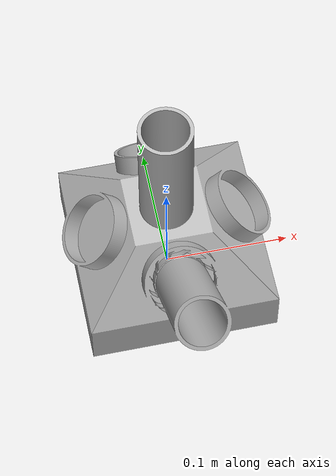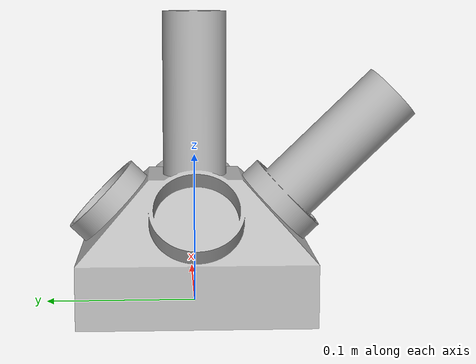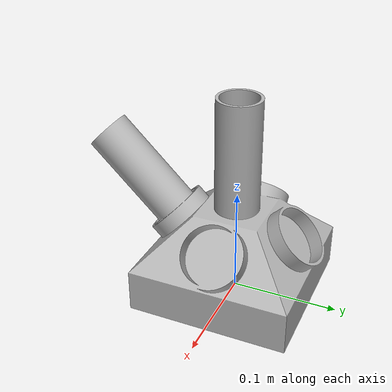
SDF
<?xml version="1.0"?>
<sdf version="1.5">
	<model name="asymmetric_pipestar_without_cap">
		<static>true</static>
		<link name="Pipestar_base">
			<inertial>
				<pose>0 0 0.027404 0 0 0</pose>
				<mass>3.0</mass>
				<inertia>
					<ixx>0.1</ixx>
					<ixy>0.0</ixy>
					<ixz>0.0</ixz>
					<iyy>0.1</iyy>
					<iyz>0.0</iyz>
					<izz>0.1</izz>
				</inertia>
			</inertial>
			<collision name="Base">
				<pose>0 0 0 0 0 0</pose>
				<geometry>
					<mesh>
						<uri>model://asymmetric_pipestar_without_cap/meshes/asymmetric_pipestar_without_cap.dae</uri>
					</mesh>
				</geometry>
			</collision>
			<visual name="visual">
				<pose>0 0 0 0 0 0</pose>
				<geometry>
					<mesh>
						<uri>model://asymmetric_pipestar_without_cap/meshes/asymmetric_pipestar_without_cap.dae</uri>
					</mesh>
				</geometry>
			</visual>
		</link>
	</model>
</sdf>
